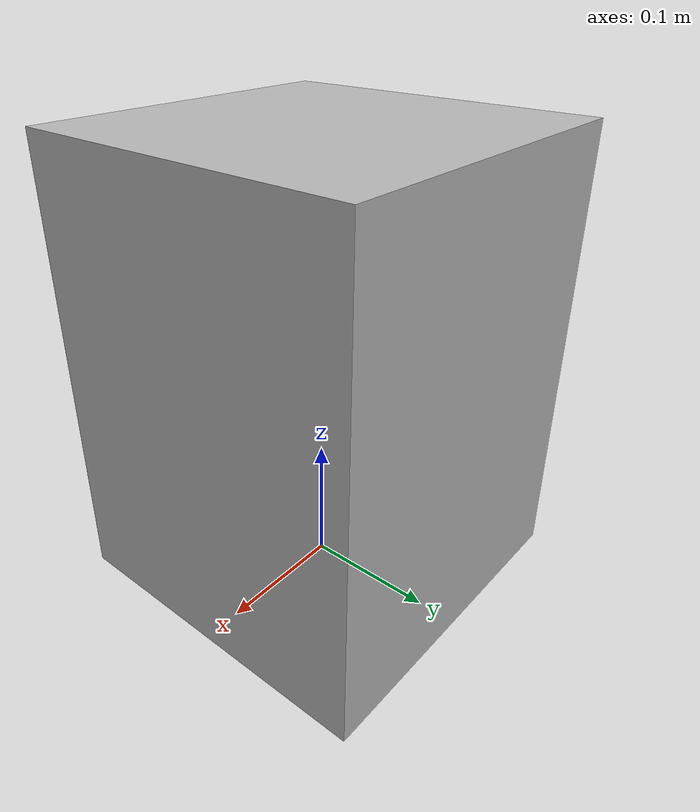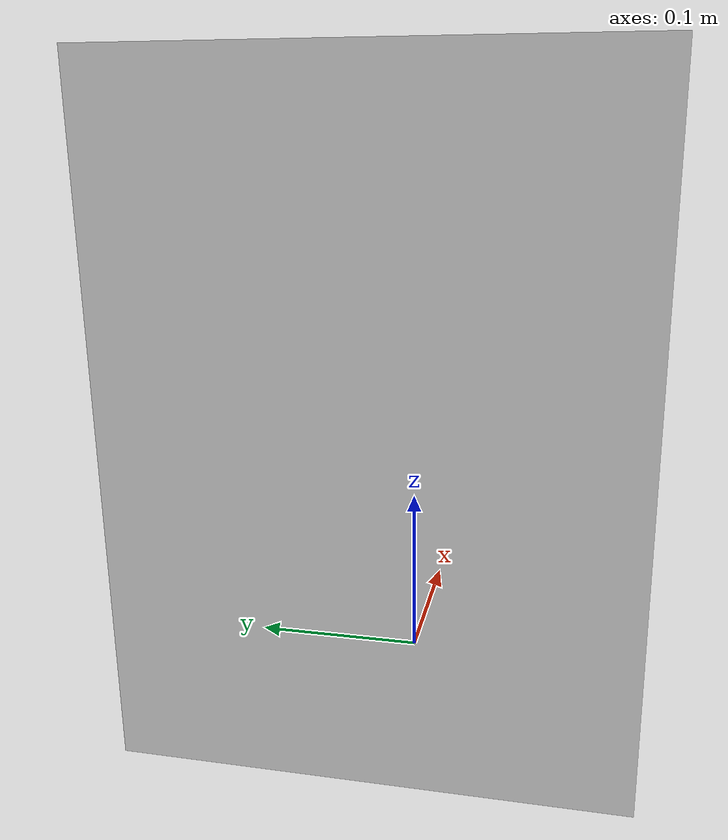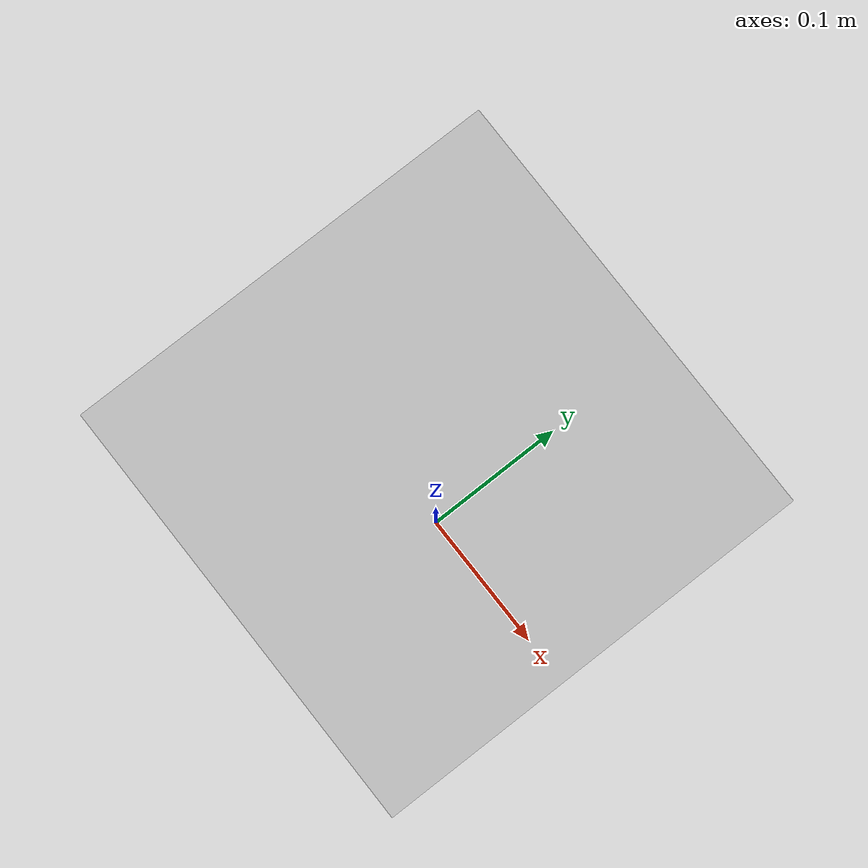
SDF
<?xml version="1.0" ?>
<sdf version="1.6">
  <model name="rwc2022/trashbin">
    <static>true</static>
    <link name="1_link">
      <collision name="1_col">
        <geometry>
          <box>
            <size>0.26 0.26 0.35</size>
          </box>
        </geometry>
      </collision>
      <visual name="1_vis">
        <geometry>
          <box>
            <size>0.26 0.26 0.35</size>
          </box>
        </geometry>
      </visual>
      <pose>0.0 0.0 0.175 0 0 0</pose>
    </link>
    <link name="on_top_of">
      <virtual_volume name="on_top_of_vv">
        <geometry>
          <box>
            <size>0.24 0.2 0.25</size>
          </box>
        </geometry>
        <pose>0.0 0.0 0.495 0 0 0</pose>
      </virtual_volume>
    </link>
    <link name="in_front_of">
      <virtual_volume name="in_front_of_vv">
        <geometry>
          <box>
            <size>0.2 0.06 0.01</size>
          </box>
        </geometry>
        <pose>0.7475 -0.4025 0.005 0 0 -0.49394137</pose>
      </virtual_volume>
    </link>
  </model>
</sdf>
